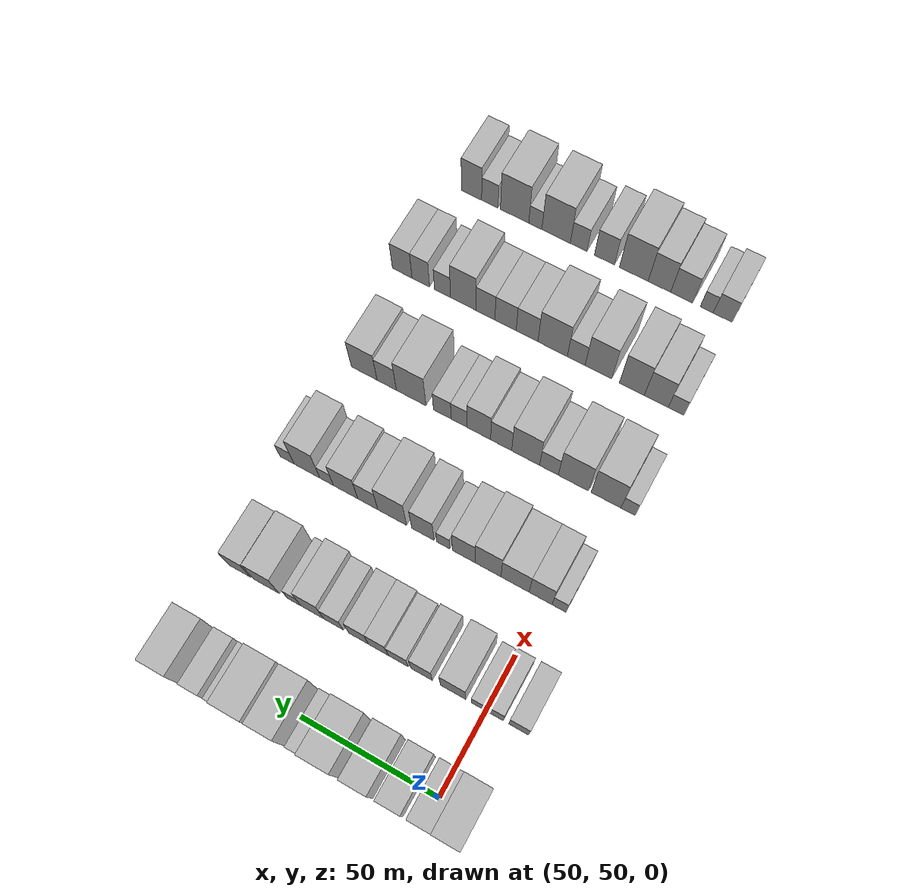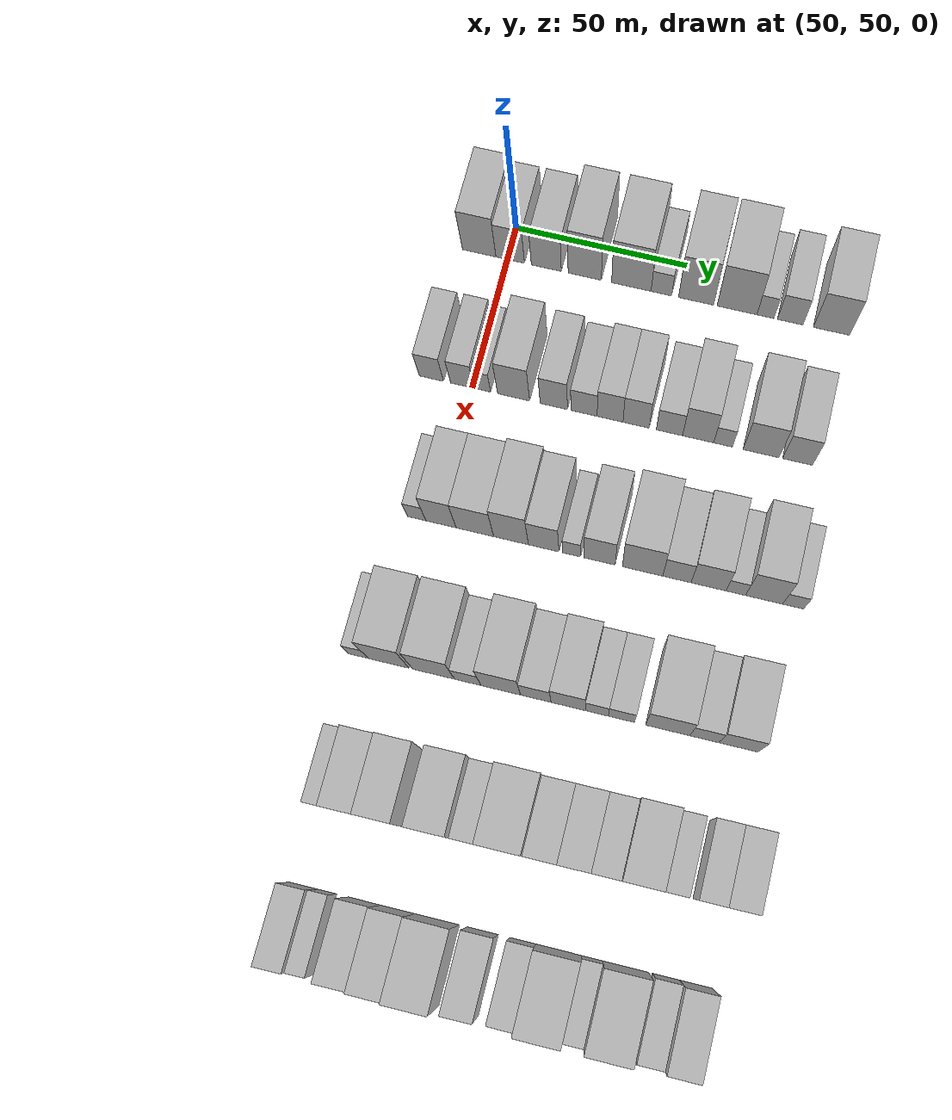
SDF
<sdf version="1.6">
 <world name="default">
  <model name="building_73">
   <static>1</static>
   <pose>50.0000 41.5729 0 0.000000 0.000000 0.000000</pose>
   <link name="link">
    <pose>0 0 10.50 0 0 0</pose>
    <collision name="collision"><geometry><box><size>20.0000 9.8615 21.0000</size></box></geometry></collision>
    <visual name="visual">
     <cast_shadows>0</cast_shadows>
     <geometry><box><size>20.0000 9.8615 21.0000</size></box></geometry>
     <material>
      <script>
       <uri>model://HANNAS_wall/materials/scripts</uri>
       <uri>model://HANNAS_wall/materials/textures</uri>
       <name>vrc/HANNAS_wall</name>
      </script>
     </material>
    </visual>
   </link>
  </model>
  <model name="building_74">
   <static>1</static>
   <pose>50.0000 50.6926 0 0.000000 0.000000 0.000000</pose>
   <link name="link">
    <pose>0 0 9.00 0 0 0</pose>
    <collision name="collision"><geometry><box><size>20.0000 8.3780 18.0000</size></box></geometry></collision>
    <visual name="visual">
     <cast_shadows>0</cast_shadows>
     <geometry><box><size>20.0000 8.3780 18.0000</size></box></geometry>
     <material>
      <script>
       <uri>model://HANNAS_wall/materials/scripts</uri>
       <uri>model://HANNAS_wall/materials/textures</uri>
       <name>vrc/HANNAS_wall</name>
      </script>
     </material>
    </visual>
   </link>
  </model>
  <model name="building_75">
   <static>1</static>
   <pose>50.0000 61.2764 0 0.000000 0.000000 0.000000</pose>
   <link name="link">
    <pose>0 0 9.00 0 0 0</pose>
    <collision name="collision"><geometry><box><size>20.0000 8.7896 18.0000</size></box></geometry></collision>
    <visual name="visual">
     <cast_shadows>0</cast_shadows>
     <geometry><box><size>20.0000 8.7896 18.0000</size></box></geometry>
     <material>
      <script>
       <uri>model://HANNAS_wall/materials/scripts</uri>
       <uri>model://HANNAS_wall/materials/textures</uri>
       <name>vrc/HANNAS_wall</name>
      </script>
     </material>
    </visual>
   </link>
  </model>
  <model name="building_76">
   <static>1</static>
   <pose>50.0000 72.5114 0 0.000000 0.000000 0.000000</pose>
   <link name="link">
    <pose>0 0 12.00 0 0 0</pose>
    <collision name="collision"><geometry><box><size>20.0000 9.6803 24.0000</size></box></geometry></collision>
    <visual name="visual">
     <cast_shadows>0</cast_shadows>
     <geometry><box><size>20.0000 9.6803 24.0000</size></box></geometry>
     <material>
      <script>
       <uri>model://HANNAS_wall/materials/scripts</uri>
       <uri>model://HANNAS_wall/materials/textures</uri>
       <name>vrc/HANNAS_wall</name>
      </script>
     </material>
    </visual>
   </link>
  </model>
  <model name="building_77">
   <static>1</static>
   <pose>50.0000 86.0876 0 0.000000 0.000000 0.000000</pose>
   <link name="link">
    <pose>0 0 12.00 0 0 0</pose>
    <collision name="collision"><geometry><box><size>20.0000 11.4721 24.0000</size></box></geometry></collision>
    <visual name="visual">
     <cast_shadows>0</cast_shadows>
     <geometry><box><size>20.0000 11.4721 24.0000</size></box></geometry>
     <material>
      <script>
       <uri>model://HANNAS_wall/materials/scripts</uri>
       <uri>model://HANNAS_wall/materials/textures</uri>
       <name>vrc/HANNAS_wall</name>
      </script>
     </material>
    </visual>
   </link>
  </model>
  <model name="building_78">
   <static>1</static>
   <pose>50.0000 94.7947 0 0.000000 0.000000 0.000000</pose>
   <link name="link">
    <pose>0 0 6.00 0 0 0</pose>
    <collision name="collision"><geometry><box><size>20.0000 5.9422 12.0000</size></box></geometry></collision>
    <visual name="visual">
     <cast_shadows>0</cast_shadows>
     <geometry><box><size>20.0000 5.9422 12.0000</size></box></geometry>
     <material>
      <script>
       <uri>model://HANNAS_wall/materials/scripts</uri>
       <uri>model://HANNAS_wall/materials/textures</uri>
       <name>vrc/HANNAS_wall</name>
      </script>
     </material>
    </visual>
   </link>
  </model>
  <model name="building_79">
   <static>1</static>
   <pose>50.0000 104.8406 0 0.000000 0.000000 0.000000</pose>
   <link name="link">
    <pose>0 0 12.00 0 0 0</pose>
    <collision name="collision"><geometry><box><size>20.0000 10.1495 24.0000</size></box></geometry></collision>
    <visual name="visual">
     <cast_shadows>0</cast_shadows>
     <geometry><box><size>20.0000 10.1495 24.0000</size></box></geometry>
     <material>
      <script>
       <uri>model://HANNAS_wall/materials/scripts</uri>
       <uri>model://HANNAS_wall/materials/textures</uri>
       <name>vrc/HANNAS_wall</name>
      </script>
     </material>
    </visual>
   </link>
  </model>
  <model name="building_80">
   <static>1</static>
   <pose>50.0000 116.6576 0 0.000000 0.000000 0.000000</pose>
   <link name="link">
    <pose>0 0 12.00 0 0 0</pose>
    <collision name="collision"><geometry><box><size>20.0000 11.4845 24.0000</size></box></geometry></collision>
    <visual name="visual">
     <cast_shadows>0</cast_shadows>
     <geometry><box><size>20.0000 11.4845 24.0000</size></box></geometry>
     <material>
      <script>
       <uri>model://HANNAS_wall/materials/scripts</uri>
       <uri>model://HANNAS_wall/materials/textures</uri>
       <name>vrc/HANNAS_wall</name>
      </script>
     </material>
    </visual>
   </link>
  </model>
  <model name="building_81">
   <static>1</static>
   <pose>50.0000 124.8423 0 0.000000 0.000000 0.000000</pose>
   <link name="link">
    <pose>0 0 6.00 0 0 0</pose>
    <collision name="collision"><geometry><box><size>20.0000 4.8848 12.0000</size></box></geometry></collision>
    <visual name="visual">
     <cast_shadows>0</cast_shadows>
     <geometry><box><size>20.0000 4.8848 12.0000</size></box></geometry>
     <material>
      <script>
       <uri>model://HANNAS_wall/materials/scripts</uri>
       <uri>model://HANNAS_wall/materials/textures</uri>
       <name>vrc/HANNAS_wall</name>
      </script>
     </material>
    </visual>
   </link>
  </model>
  <model name="building_82">
   <static>1</static>
   <pose>50.0000 131.9347 0 0.000000 0.000000 0.000000</pose>
   <link name="link">
    <pose>0 0 7.50 0 0 0</pose>
    <collision name="collision"><geometry><box><size>20.0000 7.3000 15.0000</size></box></geometry></collision>
    <visual name="visual">
     <cast_shadows>0</cast_shadows>
     <geometry><box><size>20.0000 7.3000 15.0000</size></box></geometry>
     <material>
      <script>
       <uri>model://HANNAS_wall/materials/scripts</uri>
       <uri>model://HANNAS_wall/materials/textures</uri>
       <name>vrc/HANNAS_wall</name>
      </script>
     </material>
    </visual>
   </link>
  </model>
  <model name="building_83">
   <static>1</static>
   <pose>50.0000 143.7689 0 0.000000 0.000000 0.000000</pose>
   <link name="link">
    <pose>0 0 10.50 0 0 0</pose>
    <collision name="collision"><geometry><box><size>20.0000 10.3684 21.0000</size></box></geometry></collision>
    <visual name="visual">
     <cast_shadows>0</cast_shadows>
     <geometry><box><size>20.0000 10.3684 21.0000</size></box></geometry>
     <material>
      <script>
       <uri>model://HANNAS_wall/materials/scripts</uri>
       <uri>model://HANNAS_wall/materials/textures</uri>
       <name>vrc/HANNAS_wall</name>
      </script>
     </material>
    </visual>
   </link>
  </model>
  <model name="building_202">
   <static>1</static>
   <pose>90.0000 38.2965 0 0.000000 0.000000 0.000000</pose>
   <link name="link">
    <pose>0 0 7.50 0 0 0</pose>
    <collision name="collision"><geometry><box><size>20.0000 7.0311 15.0000</size></box></geometry></collision>
    <visual name="visual">
     <cast_shadows>0</cast_shadows>
     <geometry><box><size>20.0000 7.0311 15.0000</size></box></geometry>
     <material>
      <script>
       <uri>model://HANNAS_wall/materials/scripts</uri>
       <uri>model://HANNAS_wall/materials/textures</uri>
       <name>vrc/HANNAS_wall</name>
      </script>
     </material>
    </visual>
   </link>
  </model>
  <model name="building_203">
   <static>1</static>
   <pose>90.0000 47.1511 0 0.000000 0.000000 0.000000</pose>
   <link name="link">
    <pose>0 0 7.50 0 0 0</pose>
    <collision name="collision"><geometry><box><size>20.0000 6.6782 15.0000</size></box></geometry></collision>
    <visual name="visual">
     <cast_shadows>0</cast_shadows>
     <geometry><box><size>20.0000 6.6782 15.0000</size></box></geometry>
     <material>
      <script>
       <uri>model://HANNAS_wall/materials/scripts</uri>
       <uri>model://HANNAS_wall/materials/textures</uri>
       <name>vrc/HANNAS_wall</name>
      </script>
     </material>
    </visual>
   </link>
  </model>
  <model name="building_204">
   <static>1</static>
   <pose>90.0000 52.9018 0 0.000000 0.000000 0.000000</pose>
   <link name="link">
    <pose>0 0 6.00 0 0 0</pose>
    <collision name="collision"><geometry><box><size>20.0000 4.8231 12.0000</size></box></geometry></collision>
    <visual name="visual">
     <cast_shadows>0</cast_shadows>
     <geometry><box><size>20.0000 4.8231 12.0000</size></box></geometry>
     <material>
      <script>
       <uri>model://HANNAS_wall/materials/scripts</uri>
       <uri>model://HANNAS_wall/materials/textures</uri>
       <name>vrc/HANNAS_wall</name>
      </script>
     </material>
    </visual>
   </link>
  </model>
  <model name="building_205">
   <static>1</static>
   <pose>90.0000 61.8875 0 0.000000 0.000000 0.000000</pose>
   <link name="link">
    <pose>0 0 10.50 0 0 0</pose>
    <collision name="collision"><geometry><box><size>20.0000 9.1485 21.0000</size></box></geometry></collision>
    <visual name="visual">
     <cast_shadows>0</cast_shadows>
     <geometry><box><size>20.0000 9.1485 21.0000</size></box></geometry>
     <material>
      <script>
       <uri>model://HANNAS_wall/materials/scripts</uri>
       <uri>model://HANNAS_wall/materials/textures</uri>
       <name>vrc/HANNAS_wall</name>
      </script>
     </material>
    </visual>
   </link>
  </model>
  <model name="building_206">
   <static>1</static>
   <pose>90.0000 73.3543 0 0.000000 0.000000 0.000000</pose>
   <link name="link">
    <pose>0 0 9.00 0 0 0</pose>
    <collision name="collision"><geometry><box><size>20.0000 7.7852 18.0000</size></box></geometry></collision>
    <visual name="visual">
     <cast_shadows>0</cast_shadows>
     <geometry><box><size>20.0000 7.7852 18.0000</size></box></geometry>
     <material>
      <script>
       <uri>model://HANNAS_wall/materials/scripts</uri>
       <uri>model://HANNAS_wall/materials/textures</uri>
       <name>vrc/HANNAS_wall</name>
      </script>
     </material>
    </visual>
   </link>
  </model>
  <model name="building_207">
   <static>1</static>
   <pose>90.0000 81.9507 0 0.000000 0.000000 0.000000</pose>
   <link name="link">
    <pose>0 0 7.50 0 0 0</pose>
    <collision name="collision"><geometry><box><size>20.0000 7.4076 15.0000</size></box></geometry></collision>
    <visual name="visual">
     <cast_shadows>0</cast_shadows>
     <geometry><box><size>20.0000 7.4076 15.0000</size></box></geometry>
     <material>
      <script>
       <uri>model://HANNAS_wall/materials/scripts</uri>
       <uri>model://HANNAS_wall/materials/textures</uri>
       <name>vrc/HANNAS_wall</name>
      </script>
     </material>
    </visual>
   </link>
  </model>
  <model name="building_208">
   <static>1</static>
   <pose>90.0000 89.3230 0 0.000000 0.000000 0.000000</pose>
   <link name="link">
    <pose>0 0 9.00 0 0 0</pose>
    <collision name="collision"><geometry><box><size>20.0000 7.3369 18.0000</size></box></geometry></collision>
    <visual name="visual">
     <cast_shadows>0</cast_shadows>
     <geometry><box><size>20.0000 7.3369 18.0000</size></box></geometry>
     <material>
      <script>
       <uri>model://HANNAS_wall/materials/scripts</uri>
       <uri>model://HANNAS_wall/materials/textures</uri>
       <name>vrc/HANNAS_wall</name>
      </script>
     </material>
    </visual>
   </link>
  </model>
  <model name="building_209">
   <static>1</static>
   <pose>90.0000 96.7065 0 0.000000 0.000000 0.000000</pose>
   <link name="link">
    <pose>0 0 9.00 0 0 0</pose>
    <collision name="collision"><geometry><box><size>20.0000 7.4303 18.0000</size></box></geometry></collision>
    <visual name="visual">
     <cast_shadows>0</cast_shadows>
     <geometry><box><size>20.0000 7.4303 18.0000</size></box></geometry>
     <material>
      <script>
       <uri>model://HANNAS_wall/materials/scripts</uri>
       <uri>model://HANNAS_wall/materials/textures</uri>
       <name>vrc/HANNAS_wall</name>
      </script>
     </material>
    </visual>
   </link>
  </model>
  <model name="building_210">
   <static>1</static>
   <pose>90.0000 106.1272 0 0.000000 0.000000 0.000000</pose>
   <link name="link">
    <pose>0 0 7.50 0 0 0</pose>
    <collision name="collision"><geometry><box><size>20.0000 7.4110 15.0000</size></box></geometry></collision>
    <visual name="visual">
     <cast_shadows>0</cast_shadows>
     <geometry><box><size>20.0000 7.4110 15.0000</size></box></geometry>
     <material>
      <script>
       <uri>model://HANNAS_wall/materials/scripts</uri>
       <uri>model://HANNAS_wall/materials/textures</uri>
       <name>vrc/HANNAS_wall</name>
      </script>
     </material>
    </visual>
   </link>
  </model>
  <model name="building_211">
   <static>1</static>
   <pose>90.0000 114.2148 0 0.000000 0.000000 0.000000</pose>
   <link name="link">
    <pose>0 0 10.50 0 0 0</pose>
    <collision name="collision"><geometry><box><size>20.0000 8.7642 21.0000</size></box></geometry></collision>
    <visual name="visual">
     <cast_shadows>0</cast_shadows>
     <geometry><box><size>20.0000 8.7642 21.0000</size></box></geometry>
     <material>
      <script>
       <uri>model://HANNAS_wall/materials/scripts</uri>
       <uri>model://HANNAS_wall/materials/textures</uri>
       <name>vrc/HANNAS_wall</name>
      </script>
     </material>
    </visual>
   </link>
  </model>
  <model name="building_212">
   <static>1</static>
   <pose>90.0000 121.2269 0 0.000000 0.000000 0.000000</pose>
   <link name="link">
    <pose>0 0 6.00 0 0 0</pose>
    <collision name="collision"><geometry><box><size>20.0000 5.2601 12.0000</size></box></geometry></collision>
    <visual name="visual">
     <cast_shadows>0</cast_shadows>
     <geometry><box><size>20.0000 5.2601 12.0000</size></box></geometry>
     <material>
      <script>
       <uri>model://HANNAS_wall/materials/scripts</uri>
       <uri>model://HANNAS_wall/materials/textures</uri>
       <name>vrc/HANNAS_wall</name>
      </script>
     </material>
    </visual>
   </link>
  </model>
  <model name="building_213">
   <static>1</static>
   <pose>90.0000 131.8807 0 0.000000 0.000000 0.000000</pose>
   <link name="link">
    <pose>0 0 10.50 0 0 0</pose>
    <collision name="collision"><geometry><box><size>20.0000 10.0474 21.0000</size></box></geometry></collision>
    <visual name="visual">
     <cast_shadows>0</cast_shadows>
     <geometry><box><size>20.0000 10.0474 21.0000</size></box></geometry>
     <material>
      <script>
       <uri>model://HANNAS_wall/materials/scripts</uri>
       <uri>model://HANNAS_wall/materials/textures</uri>
       <name>vrc/HANNAS_wall</name>
      </script>
     </material>
    </visual>
   </link>
  </model>
  <model name="building_214">
   <static>1</static>
   <pose>90.0000 142.0774 0 0.000000 0.000000 0.000000</pose>
   <link name="link">
    <pose>0 0 9.00 0 0 0</pose>
    <collision name="collision"><geometry><box><size>20.0000 8.3460 18.0000</size></box></geometry></collision>
    <visual name="visual">
     <cast_shadows>0</cast_shadows>
     <geometry><box><size>20.0000 8.3460 18.0000</size></box></geometry>
     <material>
      <script>
       <uri>model://HANNAS_wall/materials/scripts</uri>
       <uri>model://HANNAS_wall/materials/textures</uri>
       <name>vrc/HANNAS_wall</name>
      </script>
     </material>
    </visual>
   </link>
  </model>
  <model name="building_337">
   <static>1</static>
   <pose>130.0000 45.0214 0 0.000000 0.000000 0.000000</pose>
   <link name="link">
    <pose>0 0 6.00 0 0 0</pose>
    <collision name="collision"><geometry><box><size>20.0000 5.1008 12.0000</size></box></geometry></collision>
    <visual name="visual">
     <cast_shadows>0</cast_shadows>
     <geometry><box><size>20.0000 5.1008 12.0000</size></box></geometry>
     <material>
      <script>
       <uri>model://HANNAS_wall/materials/scripts</uri>
       <uri>model://HANNAS_wall/materials/textures</uri>
       <name>vrc/HANNAS_wall</name>
      </script>
     </material>
    </visual>
   </link>
  </model>
  <model name="building_338">
   <static>1</static>
   <pose>130.0000 51.7958 0 0.000000 0.000000 0.000000</pose>
   <link name="link">
    <pose>0 0 10.50 0 0 0</pose>
    <collision name="collision"><geometry><box><size>20.0000 8.4479 21.0000</size></box></geometry></collision>
    <visual name="visual">
     <cast_shadows>0</cast_shadows>
     <geometry><box><size>20.0000 8.4479 21.0000</size></box></geometry>
     <material>
      <script>
       <uri>model://HANNAS_wall/materials/scripts</uri>
       <uri>model://HANNAS_wall/materials/textures</uri>
       <name>vrc/HANNAS_wall</name>
      </script>
     </material>
    </visual>
   </link>
  </model>
  <model name="building_339">
   <static>1</static>
   <pose>130.0000 61.2668 0 0.000000 0.000000 0.000000</pose>
   <link name="link">
    <pose>0 0 10.50 0 0 0</pose>
    <collision name="collision"><geometry><box><size>20.0000 10.4941 21.0000</size></box></geometry></collision>
    <visual name="visual">
     <cast_shadows>0</cast_shadows>
     <geometry><box><size>20.0000 10.4941 21.0000</size></box></geometry>
     <material>
      <script>
       <uri>model://HANNAS_wall/materials/scripts</uri>
       <uri>model://HANNAS_wall/materials/textures</uri>
       <name>vrc/HANNAS_wall</name>
      </script>
     </material>
    </visual>
   </link>
  </model>
  <model name="building_340">
   <static>1</static>
   <pose>130.0000 71.3496 0 0.000000 0.000000 0.000000</pose>
   <link name="link">
    <pose>0 0 12.00 0 0 0</pose>
    <collision name="collision"><geometry><box><size>20.0000 9.6714 24.0000</size></box></geometry></collision>
    <visual name="visual">
     <cast_shadows>0</cast_shadows>
     <geometry><box><size>20.0000 9.6714 24.0000</size></box></geometry>
     <material>
      <script>
       <uri>model://HANNAS_wall/materials/scripts</uri>
       <uri>model://HANNAS_wall/materials/textures</uri>
       <name>vrc/HANNAS_wall</name>
      </script>
     </material>
    </visual>
   </link>
  </model>
  <model name="building_341">
   <static>1</static>
   <pose>130.0000 80.4283 0 0.000000 0.000000 0.000000</pose>
   <link name="link">
    <pose>0 0 10.50 0 0 0</pose>
    <collision name="collision"><geometry><box><size>20.0000 8.4860 21.0000</size></box></geometry></collision>
    <visual name="visual">
     <cast_shadows>0</cast_shadows>
     <geometry><box><size>20.0000 8.4860 21.0000</size></box></geometry>
     <material>
      <script>
       <uri>model://HANNAS_wall/materials/scripts</uri>
       <uri>model://HANNAS_wall/materials/textures</uri>
       <name>vrc/HANNAS_wall</name>
      </script>
     </material>
    </visual>
   </link>
  </model>
  <model name="building_342">
   <static>1</static>
   <pose>130.0000 88.1555 0 0.000000 0.000000 0.000000</pose>
   <link name="link">
    <pose>0 0 6.00 0 0 0</pose>
    <collision name="collision"><geometry><box><size>20.0000 4.9684 12.0000</size></box></geometry></collision>
    <visual name="visual">
     <cast_shadows>0</cast_shadows>
     <geometry><box><size>20.0000 4.9684 12.0000</size></box></geometry>
     <material>
      <script>
       <uri>model://HANNAS_wall/materials/scripts</uri>
       <uri>model://HANNAS_wall/materials/textures</uri>
       <name>vrc/HANNAS_wall</name>
      </script>
     </material>
    </visual>
   </link>
  </model>
  <model name="building_343">
   <static>1</static>
   <pose>130.0000 95.9050 0 0.000000 0.000000 0.000000</pose>
   <link name="link">
    <pose>0 0 10.50 0 0 0</pose>
    <collision name="collision"><geometry><box><size>20.0000 8.5306 21.0000</size></box></geometry></collision>
    <visual name="visual">
     <cast_shadows>0</cast_shadows>
     <geometry><box><size>20.0000 8.5306 21.0000</size></box></geometry>
     <material>
      <script>
       <uri>model://HANNAS_wall/materials/scripts</uri>
       <uri>model://HANNAS_wall/materials/textures</uri>
       <name>vrc/HANNAS_wall</name>
      </script>
     </material>
    </visual>
   </link>
  </model>
  <model name="building_344">
   <static>1</static>
   <pose>130.0000 107.7228 0 0.000000 0.000000 0.000000</pose>
   <link name="link">
    <pose>0 0 12.00 0 0 0</pose>
    <collision name="collision"><geometry><box><size>20.0000 11.1052 24.0000</size></box></geometry></collision>
    <visual name="visual">
     <cast_shadows>0</cast_shadows>
     <geometry><box><size>20.0000 11.1052 24.0000</size></box></geometry>
     <material>
      <script>
       <uri>model://HANNAS_wall/materials/scripts</uri>
       <uri>model://HANNAS_wall/materials/textures</uri>
       <name>vrc/HANNAS_wall</name>
      </script>
     </material>
    </visual>
   </link>
  </model>
  <model name="building_345">
   <static>1</static>
   <pose>130.0000 117.1541 0 0.000000 0.000000 0.000000</pose>
   <link name="link">
    <pose>0 0 9.00 0 0 0</pose>
    <collision name="collision"><geometry><box><size>20.0000 7.7574 18.0000</size></box></geometry></collision>
    <visual name="visual">
     <cast_shadows>0</cast_shadows>
     <geometry><box><size>20.0000 7.7574 18.0000</size></box></geometry>
     <material>
      <script>
       <uri>model://HANNAS_wall/materials/scripts</uri>
       <uri>model://HANNAS_wall/materials/textures</uri>
       <name>vrc/HANNAS_wall</name>
      </script>
     </material>
    </visual>
   </link>
  </model>
  <model name="building_346">
   <static>1</static>
   <pose>130.0000 125.8296 0 0.000000 0.000000 0.000000</pose>
   <link name="link">
    <pose>0 0 10.50 0 0 0</pose>
    <collision name="collision"><geometry><box><size>20.0000 9.5936 21.0000</size></box></geometry></collision>
    <visual name="visual">
     <cast_shadows>0</cast_shadows>
     <geometry><box><size>20.0000 9.5936 21.0000</size></box></geometry>
     <material>
      <script>
       <uri>model://HANNAS_wall/materials/scripts</uri>
       <uri>model://HANNAS_wall/materials/textures</uri>
       <name>vrc/HANNAS_wall</name>
      </script>
     </material>
    </visual>
   </link>
  </model>
  <model name="building_347">
   <static>1</static>
   <pose>130.0000 133.2832 0 0.000000 0.000000 0.000000</pose>
   <link name="link">
    <pose>0 0 6.00 0 0 0</pose>
    <collision name="collision"><geometry><box><size>20.0000 5.3137 12.0000</size></box></geometry></collision>
    <visual name="visual">
     <cast_shadows>0</cast_shadows>
     <geometry><box><size>20.0000 5.3137 12.0000</size></box></geometry>
     <material>
      <script>
       <uri>model://HANNAS_wall/materials/scripts</uri>
       <uri>model://HANNAS_wall/materials/textures</uri>
       <name>vrc/HANNAS_wall</name>
      </script>
     </material>
    </visual>
   </link>
  </model>
  <model name="building_348">
   <static>1</static>
   <pose>130.0000 140.9967 0 0.000000 0.000000 0.000000</pose>
   <link name="link">
    <pose>0 0 12.00 0 0 0</pose>
    <collision name="collision"><geometry><box><size>20.0000 10.1133 24.0000</size></box></geometry></collision>
    <visual name="visual">
     <cast_shadows>0</cast_shadows>
     <geometry><box><size>20.0000 10.1133 24.0000</size></box></geometry>
     <material>
      <script>
       <uri>model://HANNAS_wall/materials/scripts</uri>
       <uri>model://HANNAS_wall/materials/textures</uri>
       <name>vrc/HANNAS_wall</name>
      </script>
     </material>
    </visual>
   </link>
  </model>
  <model name="building_349">
   <static>1</static>
   <pose>130.0000 148.9226 0 0.000000 0.000000 0.000000</pose>
   <link name="link">
    <pose>0 0 6.00 0 0 0</pose>
    <collision name="collision"><geometry><box><size>20.0000 5.7386 12.0000</size></box></geometry></collision>
    <visual name="visual">
     <cast_shadows>0</cast_shadows>
     <geometry><box><size>20.0000 5.7386 12.0000</size></box></geometry>
     <material>
      <script>
       <uri>model://HANNAS_wall/materials/scripts</uri>
       <uri>model://HANNAS_wall/materials/textures</uri>
       <name>vrc/HANNAS_wall</name>
      </script>
     </material>
    </visual>
   </link>
  </model>
  <model name="building_471">
   <static>1</static>
   <pose>170.0000 40.0039 0 0.000000 0.000000 0.000000</pose>
   <link name="link">
    <pose>0 0 6.00 0 0 0</pose>
    <collision name="collision"><geometry><box><size>20.0000 5.3194 12.0000</size></box></geometry></collision>
    <visual name="visual">
     <cast_shadows>0</cast_shadows>
     <geometry><box><size>20.0000 5.3194 12.0000</size></box></geometry>
     <material>
      <script>
       <uri>model://HANNAS_wall/materials/scripts</uri>
       <uri>model://HANNAS_wall/materials/textures</uri>
       <name>vrc/HANNAS_wall</name>
      </script>
     </material>
    </visual>
   </link>
  </model>
  <model name="building_472">
   <static>1</static>
   <pose>170.0000 48.2484 0 0.000000 0.000000 0.000000</pose>
   <link name="link">
    <pose>0 0 12.00 0 0 0</pose>
    <collision name="collision"><geometry><box><size>20.0000 11.1696 24.0000</size></box></geometry></collision>
    <visual name="visual">
     <cast_shadows>0</cast_shadows>
     <geometry><box><size>20.0000 11.1696 24.0000</size></box></geometry>
     <material>
      <script>
       <uri>model://HANNAS_wall/materials/scripts</uri>
       <uri>model://HANNAS_wall/materials/textures</uri>
       <name>vrc/HANNAS_wall</name>
      </script>
     </material>
    </visual>
   </link>
  </model>
  <model name="building_473">
   <static>1</static>
   <pose>170.0000 60.5387 0 0.000000 0.000000 0.000000</pose>
   <link name="link">
    <pose>0 0 12.00 0 0 0</pose>
    <collision name="collision"><geometry><box><size>20.0000 11.4110 24.0000</size></box></geometry></collision>
    <visual name="visual">
     <cast_shadows>0</cast_shadows>
     <geometry><box><size>20.0000 11.4110 24.0000</size></box></geometry>
     <material>
      <script>
       <uri>model://HANNAS_wall/materials/scripts</uri>
       <uri>model://HANNAS_wall/materials/textures</uri>
       <name>vrc/HANNAS_wall</name>
      </script>
     </material>
    </visual>
   </link>
  </model>
  <model name="building_474">
   <static>1</static>
   <pose>170.0000 69.8308 0 0.000000 0.000000 0.000000</pose>
   <link name="link">
    <pose>0 0 7.50 0 0 0</pose>
    <collision name="collision"><geometry><box><size>20.0000 7.1732 15.0000</size></box></geometry></collision>
    <visual name="visual">
     <cast_shadows>0</cast_shadows>
     <geometry><box><size>20.0000 7.1732 15.0000</size></box></geometry>
     <material>
      <script>
       <uri>model://HANNAS_wall/materials/scripts</uri>
       <uri>model://HANNAS_wall/materials/textures</uri>
       <name>vrc/HANNAS_wall</name>
      </script>
     </material>
    </visual>
   </link>
  </model>
  <model name="building_475">
   <static>1</static>
   <pose>170.0000 78.7997 0 0.000000 0.000000 0.000000</pose>
   <link name="link">
    <pose>0 0 12.00 0 0 0</pose>
    <collision name="collision"><geometry><box><size>20.0000 10.7647 24.0000</size></box></geometry></collision>
    <visual name="visual">
     <cast_shadows>0</cast_shadows>
     <geometry><box><size>20.0000 10.7647 24.0000</size></box></geometry>
     <material>
      <script>
       <uri>model://HANNAS_wall/materials/scripts</uri>
       <uri>model://HANNAS_wall/materials/textures</uri>
       <name>vrc/HANNAS_wall</name>
      </script>
     </material>
    </visual>
   </link>
  </model>
  <model name="building_476">
   <static>1</static>
   <pose>170.0000 88.2713 0 0.000000 0.000000 0.000000</pose>
   <link name="link">
    <pose>0 0 9.00 0 0 0</pose>
    <collision name="collision"><geometry><box><size>20.0000 8.1785 18.0000</size></box></geometry></collision>
    <visual name="visual">
     <cast_shadows>0</cast_shadows>
     <geometry><box><size>20.0000 8.1785 18.0000</size></box></geometry>
     <material>
      <script>
       <uri>model://HANNAS_wall/materials/scripts</uri>
       <uri>model://HANNAS_wall/materials/textures</uri>
       <name>vrc/HANNAS_wall</name>
      </script>
     </material>
    </visual>
   </link>
  </model>
  <model name="building_477">
   <static>1</static>
   <pose>170.0000 96.9643 0 0.000000 0.000000 0.000000</pose>
   <link name="link">
    <pose>0 0 10.50 0 0 0</pose>
    <collision name="collision"><geometry><box><size>20.0000 9.2074 21.0000</size></box></geometry></collision>
    <visual name="visual">
     <cast_shadows>0</cast_shadows>
     <geometry><box><size>20.0000 9.2074 21.0000</size></box></geometry>
     <material>
      <script>
       <uri>model://HANNAS_wall/materials/scripts</uri>
       <uri>model://HANNAS_wall/materials/textures</uri>
       <name>vrc/HANNAS_wall</name>
      </script>
     </material>
    </visual>
   </link>
  </model>
  <model name="building_478">
   <static>1</static>
   <pose>170.0000 104.6642 0 0.000000 0.000000 0.000000</pose>
   <link name="link">
    <pose>0 0 7.50 0 0 0</pose>
    <collision name="collision"><geometry><box><size>20.0000 6.1926 15.0000</size></box></geometry></collision>
    <visual name="visual">
     <cast_shadows>0</cast_shadows>
     <geometry><box><size>20.0000 6.1926 15.0000</size></box></geometry>
     <material>
      <script>
       <uri>model://HANNAS_wall/materials/scripts</uri>
       <uri>model://HANNAS_wall/materials/textures</uri>
       <name>vrc/HANNAS_wall</name>
      </script>
     </material>
    </visual>
   </link>
  </model>
  <model name="building_479">
   <static>1</static>
   <pose>170.0000 111.2532 0 0.000000 0.000000 0.000000</pose>
   <link name="link">
    <pose>0 0 7.50 0 0 0</pose>
    <collision name="collision"><geometry><box><size>20.0000 6.9853 15.0000</size></box></geometry></collision>
    <visual name="visual">
     <cast_shadows>0</cast_shadows>
     <geometry><box><size>20.0000 6.9853 15.0000</size></box></geometry>
     <material>
      <script>
       <uri>model://HANNAS_wall/materials/scripts</uri>
       <uri>model://HANNAS_wall/materials/textures</uri>
       <name>vrc/HANNAS_wall</name>
      </script>
     </material>
    </visual>
   </link>
  </model>
  <model name="building_480">
   <static>1</static>
   <pose>170.0000 123.6330 0 0.000000 0.000000 0.000000</pose>
   <link name="link">
    <pose>0 0 12.00 0 0 0</pose>
    <collision name="collision"><geometry><box><size>20.0000 11.7744 24.0000</size></box></geometry></collision>
    <visual name="visual">
     <cast_shadows>0</cast_shadows>
     <geometry><box><size>20.0000 11.7744 24.0000</size></box></geometry>
     <material>
      <script>
       <uri>model://HANNAS_wall/materials/scripts</uri>
       <uri>model://HANNAS_wall/materials/textures</uri>
       <name>vrc/HANNAS_wall</name>
      </script>
     </material>
    </visual>
   </link>
  </model>
  <model name="building_481">
   <static>1</static>
   <pose>170.0000 133.3877 0 0.000000 0.000000 0.000000</pose>
   <link name="link">
    <pose>0 0 9.00 0 0 0</pose>
    <collision name="collision"><geometry><box><size>20.0000 7.7348 18.0000</size></box></geometry></collision>
    <visual name="visual">
     <cast_shadows>0</cast_shadows>
     <geometry><box><size>20.0000 7.7348 18.0000</size></box></geometry>
     <material>
      <script>
       <uri>model://HANNAS_wall/materials/scripts</uri>
       <uri>model://HANNAS_wall/materials/textures</uri>
       <name>vrc/HANNAS_wall</name>
      </script>
     </material>
    </visual>
   </link>
  </model>
  <model name="building_482">
   <static>1</static>
   <pose>170.0000 142.4524 0 0.000000 0.000000 0.000000</pose>
   <link name="link">
    <pose>0 0 10.50 0 0 0</pose>
    <collision name="collision"><geometry><box><size>20.0000 10.3947 21.0000</size></box></geometry></collision>
    <visual name="visual">
     <cast_shadows>0</cast_shadows>
     <geometry><box><size>20.0000 10.3947 21.0000</size></box></geometry>
     <material>
      <script>
       <uri>model://HANNAS_wall/materials/scripts</uri>
       <uri>model://HANNAS_wall/materials/textures</uri>
       <name>vrc/HANNAS_wall</name>
      </script>
     </material>
    </visual>
   </link>
  </model>
  <model name="building_607">
   <static>1</static>
   <pose>210.0000 41.5946 0 0.000000 0.000000 0.000000</pose>
   <link name="link">
    <pose>0 0 6.00 0 0 0</pose>
    <collision name="collision"><geometry><box><size>20.0000 5.9468 12.0000</size></box></geometry></collision>
    <visual name="visual">
     <cast_shadows>0</cast_shadows>
     <geometry><box><size>20.0000 5.9468 12.0000</size></box></geometry>
     <material>
      <script>
       <uri>model://HANNAS_wall/materials/scripts</uri>
       <uri>model://HANNAS_wall/materials/textures</uri>
       <name>vrc/HANNAS_wall</name>
      </script>
     </material>
    </visual>
   </link>
  </model>
  <model name="building_608">
   <static>1</static>
   <pose>210.0000 49.1331 0 0.000000 0.000000 0.000000</pose>
   <link name="link">
    <pose>0 0 10.50 0 0 0</pose>
    <collision name="collision"><geometry><box><size>20.0000 9.1300 21.0000</size></box></geometry></collision>
    <visual name="visual">
     <cast_shadows>0</cast_shadows>
     <geometry><box><size>20.0000 9.1300 21.0000</size></box></geometry>
     <material>
      <script>
       <uri>model://HANNAS_wall/materials/scripts</uri>
       <uri>model://HANNAS_wall/materials/textures</uri>
       <name>vrc/HANNAS_wall</name>
      </script>
     </material>
    </visual>
   </link>
  </model>
  <model name="building_609">
   <static>1</static>
   <pose>210.0000 58.5265 0 0.000000 0.000000 0.000000</pose>
   <link name="link">
    <pose>0 0 12.00 0 0 0</pose>
    <collision name="collision"><geometry><box><size>20.0000 9.6568 24.0000</size></box></geometry></collision>
    <visual name="visual">
     <cast_shadows>0</cast_shadows>
     <geometry><box><size>20.0000 9.6568 24.0000</size></box></geometry>
     <material>
      <script>
       <uri>model://HANNAS_wall/materials/scripts</uri>
       <uri>model://HANNAS_wall/materials/textures</uri>
       <name>vrc/HANNAS_wall</name>
      </script>
     </material>
    </visual>
   </link>
  </model>
  <model name="building_610">
   <static>1</static>
   <pose>210.0000 71.5496 0 0.000000 0.000000 0.000000</pose>
   <link name="link">
    <pose>0 0 12.00 0 0 0</pose>
    <collision name="collision"><geometry><box><size>20.0000 10.3895 24.0000</size></box></geometry></collision>
    <visual name="visual">
     <cast_shadows>0</cast_shadows>
     <geometry><box><size>20.0000 10.3895 24.0000</size></box></geometry>
     <material>
      <script>
       <uri>model://HANNAS_wall/materials/scripts</uri>
       <uri>model://HANNAS_wall/materials/textures</uri>
       <name>vrc/HANNAS_wall</name>
      </script>
     </material>
    </visual>
   </link>
  </model>
  <model name="building_611">
   <static>1</static>
   <pose>210.0000 80.2231 0 0.000000 0.000000 0.000000</pose>
   <link name="link">
    <pose>0 0 7.50 0 0 0</pose>
    <collision name="collision"><geometry><box><size>20.0000 6.9575 15.0000</size></box></geometry></collision>
    <visual name="visual">
     <cast_shadows>0</cast_shadows>
     <geometry><box><size>20.0000 6.9575 15.0000</size></box></geometry>
     <material>
      <script>
       <uri>model://HANNAS_wall/materials/scripts</uri>
       <uri>model://HANNAS_wall/materials/textures</uri>
       <name>vrc/HANNAS_wall</name>
      </script>
     </material>
    </visual>
   </link>
  </model>
  <model name="building_612">
   <static>1</static>
   <pose>210.0000 89.5358 0 0.000000 0.000000 0.000000</pose>
   <link name="link">
    <pose>0 0 12.00 0 0 0</pose>
    <collision name="collision"><geometry><box><size>20.0000 11.6680 24.0000</size></box></geometry></collision>
    <visual name="visual">
     <cast_shadows>0</cast_shadows>
     <geometry><box><size>20.0000 11.6680 24.0000</size></box></geometry>
     <material>
      <script>
       <uri>model://HANNAS_wall/materials/scripts</uri>
       <uri>model://HANNAS_wall/materials/textures</uri>
       <name>vrc/HANNAS_wall</name>
      </script>
     </material>
    </visual>
   </link>
  </model>
  <model name="building_613">
   <static>1</static>
   <pose>210.0000 99.7060 0 0.000000 0.000000 0.000000</pose>
   <link name="link">
    <pose>0 0 9.00 0 0 0</pose>
    <collision name="collision"><geometry><box><size>20.0000 8.6724 18.0000</size></box></geometry></collision>
    <visual name="visual">
     <cast_shadows>0</cast_shadows>
     <geometry><box><size>20.0000 8.6724 18.0000</size></box></geometry>
     <material>
      <script>
       <uri>model://HANNAS_wall/materials/scripts</uri>
       <uri>model://HANNAS_wall/materials/textures</uri>
       <name>vrc/HANNAS_wall</name>
      </script>
     </material>
    </visual>
   </link>
  </model>
  <model name="building_614">
   <static>1</static>
   <pose>210.0000 108.3211 0 0.000000 0.000000 0.000000</pose>
   <link name="link">
    <pose>0 0 9.00 0 0 0</pose>
    <collision name="collision"><geometry><box><size>20.0000 8.5579 18.0000</size></box></geometry></collision>
    <visual name="visual">
     <cast_shadows>0</cast_shadows>
     <geometry><box><size>20.0000 8.5579 18.0000</size></box></geometry>
     <material>
      <script>
       <uri>model://HANNAS_wall/materials/scripts</uri>
       <uri>model://HANNAS_wall/materials/textures</uri>
       <name>vrc/HANNAS_wall</name>
      </script>
     </material>
    </visual>
   </link>
  </model>
  <model name="building_615">
   <static>1</static>
   <pose>210.0000 116.3976 0 0.000000 0.000000 0.000000</pose>
   <link name="link">
    <pose>0 0 9.00 0 0 0</pose>
    <collision name="collision"><geometry><box><size>20.0000 7.5951 18.0000</size></box></geometry></collision>
    <visual name="visual">
     <cast_shadows>0</cast_shadows>
     <geometry><box><size>20.0000 7.5951 18.0000</size></box></geometry>
     <material>
      <script>
       <uri>model://HANNAS_wall/materials/scripts</uri>
       <uri>model://HANNAS_wall/materials/textures</uri>
       <name>vrc/HANNAS_wall</name>
      </script>
     </material>
    </visual>
   </link>
  </model>
  <model name="building_616">
   <static>1</static>
   <pose>210.0000 125.3986 0 0.000000 0.000000 0.000000</pose>
   <link name="link">
    <pose>0 0 12.00 0 0 0</pose>
    <collision name="collision"><geometry><box><size>20.0000 10.4068 24.0000</size></box></geometry></collision>
    <visual name="visual">
     <cast_shadows>0</cast_shadows>
     <geometry><box><size>20.0000 10.4068 24.0000</size></box></geometry>
     <material>
      <script>
       <uri>model://HANNAS_wall/materials/scripts</uri>
       <uri>model://HANNAS_wall/materials/textures</uri>
       <name>vrc/HANNAS_wall</name>
      </script>
     </material>
    </visual>
   </link>
  </model>
  <model name="building_617">
   <static>1</static>
   <pose>210.0000 133.9004 0 0.000000 0.000000 0.000000</pose>
   <link name="link">
    <pose>0 0 7.50 0 0 0</pose>
    <collision name="collision"><geometry><box><size>20.0000 6.5967 15.0000</size></box></geometry></collision>
    <visual name="visual">
     <cast_shadows>0</cast_shadows>
     <geometry><box><size>20.0000 6.5967 15.0000</size></box></geometry>
     <material>
      <script>
       <uri>model://HANNAS_wall/materials/scripts</uri>
       <uri>model://HANNAS_wall/materials/textures</uri>
       <name>vrc/HANNAS_wall</name>
      </script>
     </material>
    </visual>
   </link>
  </model>
  <model name="building_618">
   <static>1</static>
   <pose>210.0000 142.8201 0 0.000000 0.000000 0.000000</pose>
   <link name="link">
    <pose>0 0 9.00 0 0 0</pose>
    <collision name="collision"><geometry><box><size>20.0000 7.2426 18.0000</size></box></geometry></collision>
    <visual name="visual">
     <cast_shadows>0</cast_shadows>
     <geometry><box><size>20.0000 7.2426 18.0000</size></box></geometry>
     <material>
      <script>
       <uri>model://HANNAS_wall/materials/scripts</uri>
       <uri>model://HANNAS_wall/materials/textures</uri>
       <name>vrc/HANNAS_wall</name>
      </script>
     </material>
    </visual>
   </link>
  </model>
  <model name="building_619">
   <static>1</static>
   <pose>210.0000 150.5088 0 0.000000 0.000000 0.000000</pose>
   <link name="link">
    <pose>0 0 9.00 0 0 0</pose>
    <collision name="collision"><geometry><box><size>20.0000 8.1348 18.0000</size></box></geometry></collision>
    <visual name="visual">
     <cast_shadows>0</cast_shadows>
     <geometry><box><size>20.0000 8.1348 18.0000</size></box></geometry>
     <material>
      <script>
       <uri>model://HANNAS_wall/materials/scripts</uri>
       <uri>model://HANNAS_wall/materials/textures</uri>
       <name>vrc/HANNAS_wall</name>
      </script>
     </material>
    </visual>
   </link>
  </model>
  <model name="building_747">
   <static>1</static>
   <pose>250.0000 42.5480 0 0.000000 0.000000 0.000000</pose>
   <link name="link">
    <pose>0 0 7.50 0 0 0</pose>
    <collision name="collision"><geometry><box><size>20.0000 7.3854 15.0000</size></box></geometry></collision>
    <visual name="visual">
     <cast_shadows>0</cast_shadows>
     <geometry><box><size>20.0000 7.3854 15.0000</size></box></geometry>
     <material>
      <script>
       <uri>model://HANNAS_wall/materials/scripts</uri>
       <uri>model://HANNAS_wall/materials/textures</uri>
       <name>vrc/HANNAS_wall</name>
      </script>
     </material>
    </visual>
   </link>
  </model>
  <model name="building_748">
   <static>1</static>
   <pose>250.0000 48.7932 0 0.000000 0.000000 0.000000</pose>
   <link name="link">
    <pose>0 0 6.00 0 0 0</pose>
    <collision name="collision"><geometry><box><size>20.0000 5.1051 12.0000</size></box></geometry></collision>
    <visual name="visual">
     <cast_shadows>0</cast_shadows>
     <geometry><box><size>20.0000 5.1051 12.0000</size></box></geometry>
     <material>
      <script>
       <uri>model://HANNAS_wall/materials/scripts</uri>
       <uri>model://HANNAS_wall/materials/textures</uri>
       <name>vrc/HANNAS_wall</name>
      </script>
     </material>
    </visual>
   </link>
  </model>
  <model name="building_749">
   <static>1</static>
   <pose>250.0000 58.6752 0 0.000000 0.000000 0.000000</pose>
   <link name="link">
    <pose>0 0 9.00 0 0 0</pose>
    <collision name="collision"><geometry><box><size>20.0000 8.6588 18.0000</size></box></geometry></collision>
    <visual name="visual">
     <cast_shadows>0</cast_shadows>
     <geometry><box><size>20.0000 8.6588 18.0000</size></box></geometry>
     <material>
      <script>
       <uri>model://HANNAS_wall/materials/scripts</uri>
       <uri>model://HANNAS_wall/materials/textures</uri>
       <name>vrc/HANNAS_wall</name>
      </script>
     </material>
    </visual>
   </link>
  </model>
  <model name="building_750">
   <static>1</static>
   <pose>250.0000 67.4763 0 0.000000 0.000000 0.000000</pose>
   <link name="link">
    <pose>0 0 10.50 0 0 0</pose>
    <collision name="collision"><geometry><box><size>20.0000 8.9434 21.0000</size></box></geometry></collision>
    <visual name="visual">
     <cast_shadows>0</cast_shadows>
     <geometry><box><size>20.0000 8.9434 21.0000</size></box></geometry>
     <material>
      <script>
       <uri>model://HANNAS_wall/materials/scripts</uri>
       <uri>model://HANNAS_wall/materials/textures</uri>
       <name>vrc/HANNAS_wall</name>
      </script>
     </material>
    </visual>
   </link>
  </model>
  <model name="building_751">
   <static>1</static>
   <pose>250.0000 77.6916 0 0.000000 0.000000 0.000000</pose>
   <link name="link">
    <pose>0 0 12.00 0 0 0</pose>
    <collision name="collision"><geometry><box><size>20.0000 11.4873 24.0000</size></box></geometry></collision>
    <visual name="visual">
     <cast_shadows>0</cast_shadows>
     <geometry><box><size>20.0000 11.4873 24.0000</size></box></geometry>
     <material>
      <script>
       <uri>model://HANNAS_wall/materials/scripts</uri>
       <uri>model://HANNAS_wall/materials/textures</uri>
       <name>vrc/HANNAS_wall</name>
      </script>
     </material>
    </visual>
   </link>
  </model>
  <model name="building_752">
   <static>1</static>
   <pose>250.0000 89.4862 0 0.000000 0.000000 0.000000</pose>
   <link name="link">
    <pose>0 0 9.00 0 0 0</pose>
    <collision name="collision"><geometry><box><size>20.0000 8.1019 18.0000</size></box></geometry></collision>
    <visual name="visual">
     <cast_shadows>0</cast_shadows>
     <geometry><box><size>20.0000 8.1019 18.0000</size></box></geometry>
     <material>
      <script>
       <uri>model://HANNAS_wall/materials/scripts</uri>
       <uri>model://HANNAS_wall/materials/textures</uri>
       <name>vrc/HANNAS_wall</name>
      </script>
     </material>
    </visual>
   </link>
  </model>
  <model name="building_753">
   <static>1</static>
   <pose>250.0000 99.9405 0 0.000000 0.000000 0.000000</pose>
   <link name="link">
    <pose>0 0 7.50 0 0 0</pose>
    <collision name="collision"><geometry><box><size>20.0000 6.8067 15.0000</size></box></geometry></collision>
    <visual name="visual">
     <cast_shadows>0</cast_shadows>
     <geometry><box><size>20.0000 6.8067 15.0000</size></box></geometry>
     <material>
      <script>
       <uri>model://HANNAS_wall/materials/scripts</uri>
       <uri>model://HANNAS_wall/materials/textures</uri>
       <name>vrc/HANNAS_wall</name>
      </script>
     </material>
    </visual>
   </link>
  </model>
  <model name="building_754">
   <static>1</static>
   <pose>250.0000 109.1784 0 0.000000 0.000000 0.000000</pose>
   <link name="link">
    <pose>0 0 12.00 0 0 0</pose>
    <collision name="collision"><geometry><box><size>20.0000 11.6691 24.0000</size></box></geometry></collision>
    <visual name="visual">
     <cast_shadows>0</cast_shadows>
     <geometry><box><size>20.0000 11.6691 24.0000</size></box></geometry>
     <material>
      <script>
       <uri>model://HANNAS_wall/materials/scripts</uri>
       <uri>model://HANNAS_wall/materials/textures</uri>
       <name>vrc/HANNAS_wall</name>
      </script>
     </material>
    </visual>
   </link>
  </model>
  <model name="building_755">
   <static>1</static>
   <pose>250.0000 117.7277 0 0.000000 0.000000 0.000000</pose>
   <link name="link">
    <pose>0 0 6.00 0 0 0</pose>
    <collision name="collision"><geometry><box><size>20.0000 5.4296 12.0000</size></box></geometry></collision>
    <visual name="visual">
     <cast_shadows>0</cast_shadows>
     <geometry><box><size>20.0000 5.4296 12.0000</size></box></geometry>
     <material>
      <script>
       <uri>model://HANNAS_wall/materials/scripts</uri>
       <uri>model://HANNAS_wall/materials/textures</uri>
       <name>vrc/HANNAS_wall</name>
      </script>
     </material>
    </visual>
   </link>
  </model>
  <model name="building_756">
   <static>1</static>
   <pose>250.0000 126.3365 0 0.000000 0.000000 0.000000</pose>
   <link name="link">
    <pose>0 0 12.00 0 0 0</pose>
    <collision name="collision"><geometry><box><size>20.0000 11.7880 24.0000</size></box></geometry></collision>
    <visual name="visual">
     <cast_shadows>0</cast_shadows>
     <geometry><box><size>20.0000 11.7880 24.0000</size></box></geometry>
     <material>
      <script>
       <uri>model://HANNAS_wall/materials/scripts</uri>
       <uri>model://HANNAS_wall/materials/textures</uri>
       <name>vrc/HANNAS_wall</name>
      </script>
     </material>
    </visual>
   </link>
  </model>
  <model name="building_757">
   <static>1</static>
   <pose>250.0000 136.6606 0 0.000000 0.000000 0.000000</pose>
   <link name="link">
    <pose>0 0 7.50 0 0 0</pose>
    <collision name="collision"><geometry><box><size>20.0000 6.8602 15.0000</size></box></geometry></collision>
    <visual name="visual">
     <cast_shadows>0</cast_shadows>
     <geometry><box><size>20.0000 6.8602 15.0000</size></box></geometry>
     <material>
      <script>
       <uri>model://HANNAS_wall/materials/scripts</uri>
       <uri>model://HANNAS_wall/materials/textures</uri>
       <name>vrc/HANNAS_wall</name>
      </script>
     </material>
    </visual>
   </link>
  </model>
  <model name="building_758">
   <static>1</static>
   <pose>250.0000 144.3002 0 0.000000 0.000000 0.000000</pose>
   <link name="link">
    <pose>0 0 10.50 0 0 0</pose>
    <collision name="collision"><geometry><box><size>20.0000 8.4189 21.0000</size></box></geometry></collision>
    <visual name="visual">
     <cast_shadows>0</cast_shadows>
     <geometry><box><size>20.0000 8.4189 21.0000</size></box></geometry>
     <material>
      <script>
       <uri>model://HANNAS_wall/materials/scripts</uri>
       <uri>model://HANNAS_wall/materials/textures</uri>
       <name>vrc/HANNAS_wall</name>
      </script>
     </material>
    </visual>
   </link>
  </model>
 </world>
</sdf>
